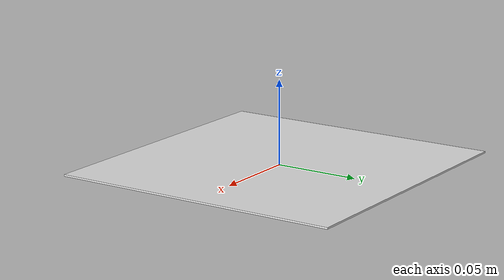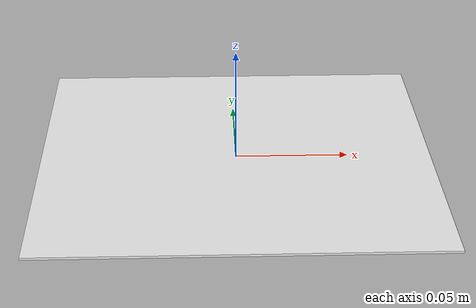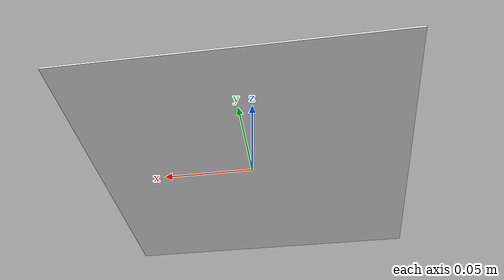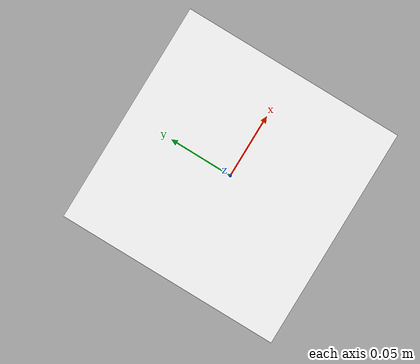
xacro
<?xml version="1.0"?>
<robot name="ar_tag" xmlns:xacro="http://www.ros.org/wiki/xacro">
  <link name="ar_tag_base">
    <visual>
      <origin xyz="0 0 0.001" rpy="0 0 0"/>
      <geometry>
        <box size="0.174 0.174 0.001"/>
      </geometry>
      <material name="ar_tag">
        <texture filename="package://inventa_description/meshes/ar_tag.png"/>
      </material>
    </visual>
    <collision>
      <origin xyz="0 0 0.001" rpy="0 0 0"/>
      <geometry>
        <box size="0.174 0.174 0.001"/>
      </geometry>
    </collision>
    <inertial>
      <mass value="0.05"/>
      <inertia ixx="0.0001" ixy="0" ixz="0" iyy="0.0001" iyz="0" izz="0.0001"/>
    </inertial>
  </link>

  <gazebo reference="ar_tag_base">
    <material>Gazebo/White</material>
    <mu1>0.2</mu1>
    <mu2>0.2</mu2>
    <selfCollide>false</selfCollide>
  </gazebo>
</robot>
